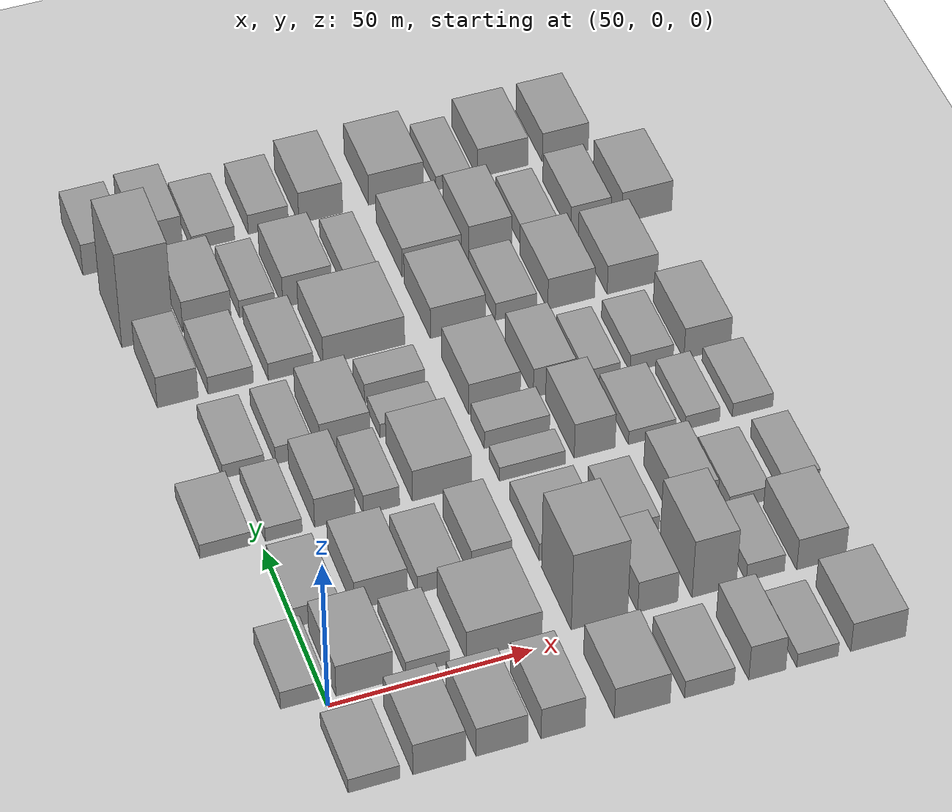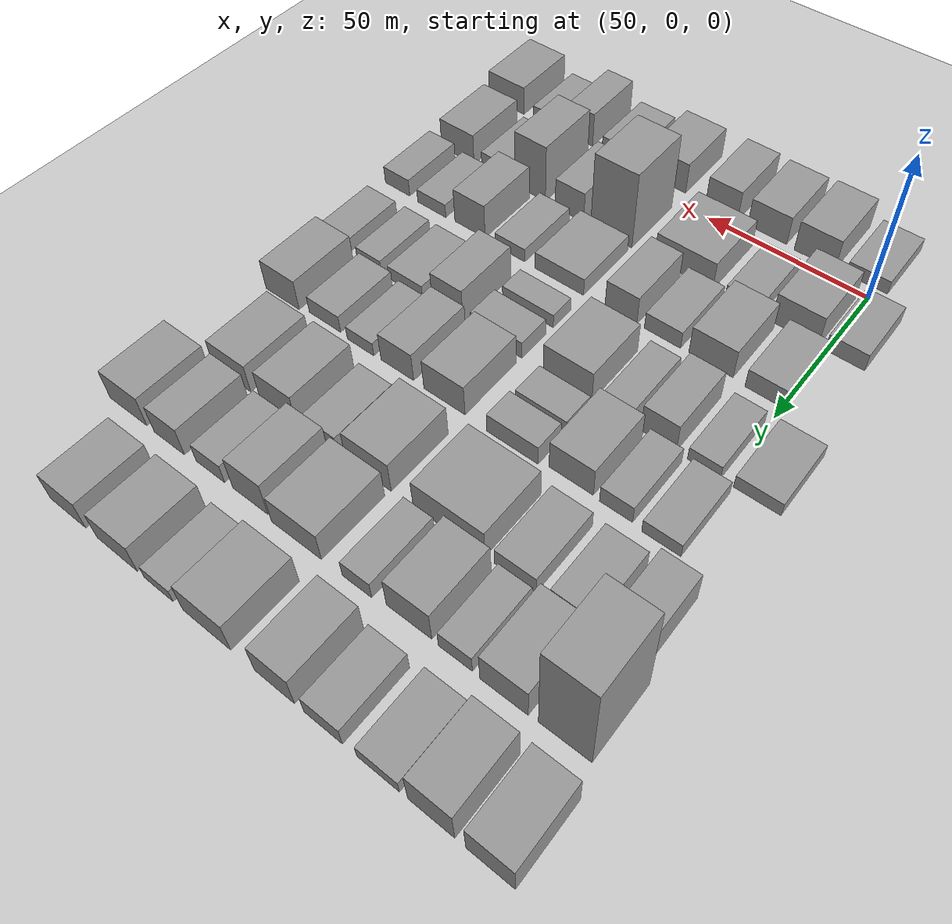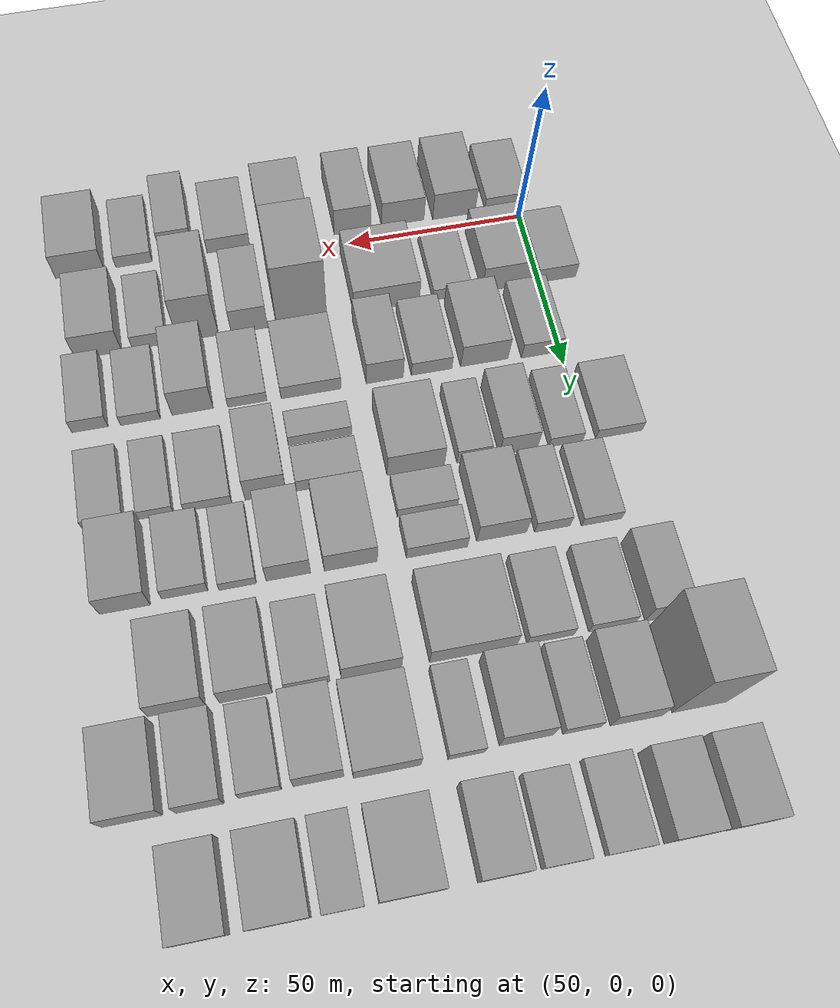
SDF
<sdf version="1.4">
 <world name="default">
  <model name="ground_plane">
   <static>1</static>
   <pose>100 65 0 0 -0 0</pose>
   <link name="link">
    <velocity_decay><linear>0</linear><angular>0</angular></velocity_decay>
    <collision name="collision">
     <geometry><plane><normal>0 0 1</normal><size>400 250</size></plane></geometry>
     <surface><friction><ode><mu>100</mu><mu2>50</mu2></ode></friction></surface>
    </collision>
    <visual name="visual">
     <geometry><plane><normal>0 0 1</normal><size>400 250</size></plane></geometry>
     <material>
      <script><name>Gazebo/Grey</name><uri>file://media/materials/scripts/gazebo.material</uri></script>
     </material>
    </visual>
   </link>
  </model>
  <model name="box_401">
   <static>1</static>
   <pose>52.74 -14.85 2 0 -0 0</pose>
   <link name="link">
    <velocity_decay><linear>0</linear><angular>0</angular></velocity_decay>
    <collision name="collision"><geometry><box><size>12.3 20.3 5</size></box></geometry></collision>
    <visual name="visual">
     <geometry><box><size>12.3 20.3 5</size></box></geometry>
     <material>
      <script><name>Gazebo/Grey</name><uri>file://media/materials/scripts/gazebo.material</uri></script>
     </material>
    </visual>
   </link>
  </model>
  <model name="box_501">
   <static>1</static>
   <pose>68.31 -14.55 5 0 -0 0</pose>
   <link name="link">
    <velocity_decay><linear>0</linear><angular>0</angular></velocity_decay>
    <collision name="collision"><geometry><box><size>12.6 20.9 11</size></box></geometry></collision>
    <visual name="visual">
     <geometry><box><size>12.6 20.9 11</size></box></geometry>
     <material>
      <script><name>Gazebo/Grey</name><uri>file://media/materials/scripts/gazebo.material</uri></script>
     </material>
    </visual>
   </link>
  </model>
  <model name="box_601">
   <static>1</static>
   <pose>83.43 -14.65 5 0 -0 0</pose>
   <link name="link">
    <velocity_decay><linear>0</linear><angular>0</angular></velocity_decay>
    <collision name="collision"><geometry><box><size>12.5 20.7 10</size></box></geometry></collision>
    <visual name="visual">
     <geometry><box><size>12.5 20.7 10</size></box></geometry>
     <material>
      <script><name>Gazebo/Grey</name><uri>file://media/materials/scripts/gazebo.material</uri></script>
     </material>
    </visual>
   </link>
  </model>
  <model name="box_701">
   <static>1</static>
   <pose>98.255 -14.6 5 0 -0 0</pose>
   <link name="link">
    <velocity_decay><linear>0</linear><angular>0</angular></velocity_decay>
    <collision name="collision"><geometry><box><size>10.69 20.8 11</size></box></geometry></collision>
    <visual name="visual">
     <geometry><box><size>10.69 20.8 11</size></box></geometry>
     <material>
      <script><name>Gazebo/Grey</name><uri>file://media/materials/scripts/gazebo.material</uri></script>
     </material>
    </visual>
   </link>
  </model>
  <model name="box_311">
   <static>1</static>
   <pose>44.92 12.85 3 0 -0 0</pose>
   <link name="link">
    <velocity_decay><linear>0</linear><angular>0</angular></velocity_decay>
    <collision name="collision"><geometry><box><size>11.2 20.3 6</size></box></geometry></collision>
    <visual name="visual">
     <geometry><box><size>11.2 20.3 6</size></box></geometry>
     <material>
      <script><name>Gazebo/Grey</name><uri>file://media/materials/scripts/gazebo.material</uri></script>
     </material>
    </visual>
   </link>
  </model>
  <model name="box_411">
   <static>1</static>
   <pose>59.4707 12.5461 5 0 -0 0</pose>
   <link name="link">
    <velocity_decay><linear>0</linear><angular>0</angular></velocity_decay>
    <collision name="collision"><geometry><box><size>13.8 20.6 11</size></box></geometry></collision>
    <visual name="visual">
     <geometry><box><size>13.8 20.6 11</size></box></geometry>
     <material>
      <script><name>Gazebo/Grey</name><uri>file://media/materials/scripts/gazebo.material</uri></script>
     </material>
    </visual>
   </link>
  </model>
  <model name="box_511">
   <static>1</static>
   <pose>75.05 12.85 2 0 -0 0</pose>
   <link name="link">
    <velocity_decay><linear>0</linear><angular>0</angular></velocity_decay>
    <collision name="collision"><geometry><box><size>10.8 20.3 5</size></box></geometry></collision>
    <visual name="visual">
     <geometry><box><size>10.8 20.3 5</size></box></geometry>
     <material>
      <script><name>Gazebo/Grey</name><uri>file://media/materials/scripts/gazebo.material</uri></script>
     </material>
    </visual>
   </link>
  </model>
  <model name="box_611">
   <static>1</static>
   <pose>93.74 12.65 5 0 -0 0</pose>
   <link name="link">
    <velocity_decay><linear>0</linear><angular>0</angular></velocity_decay>
    <collision name="collision"><geometry><box><size>18.72 20.7 10</size></box></geometry></collision>
    <visual name="visual">
     <geometry><box><size>18.72 20.7 10</size></box></geometry>
     <material>
      <script><name>Gazebo/Grey</name><uri>file://media/materials/scripts/gazebo.material</uri></script>
     </material>
    </visual>
   </link>
  </model>
  <model name="box_421">
   <static>1</static>
   <pose>55.17 35.35 3 0 -0 0</pose>
   <link name="link">
    <velocity_decay><linear>0</linear><angular>0</angular></velocity_decay>
    <collision name="collision"><geometry><box><size>11.3 20.7 7</size></box></geometry></collision>
    <visual name="visual">
     <geometry><box><size>11.3 20.7 7</size></box></geometry>
     <material>
      <script><name>Gazebo/Grey</name><uri>file://media/materials/scripts/gazebo.material</uri></script>
     </material>
    </visual>
   </link>
  </model>
  <model name="box_521">
   <static>1</static>
   <pose>71.13 35.15 5 0 -0 0</pose>
   <link name="link">
    <velocity_decay><linear>0</linear><angular>0</angular></velocity_decay>
    <collision name="collision"><geometry><box><size>13.2 20.3 10</size></box></geometry></collision>
    <visual name="visual">
     <geometry><box><size>13.2 20.3 10</size></box></geometry>
     <material>
      <script><name>Gazebo/Grey</name><uri>file://media/materials/scripts/gazebo.material</uri></script>
     </material>
    </visual>
   </link>
  </model>
  <model name="box_621">
   <static>1</static>
   <pose>85.77 35.2 3 0 -0 0</pose>
   <link name="link">
    <velocity_decay><linear>0</linear><angular>0</angular></velocity_decay>
    <collision name="collision"><geometry><box><size>11.2 20.4 6</size></box></geometry></collision>
    <visual name="visual">
     <geometry><box><size>11.2 20.4 6</size></box></geometry>
     <material>
      <script><name>Gazebo/Grey</name><uri>file://media/materials/scripts/gazebo.material</uri></script>
     </material>
    </visual>
   </link>
  </model>
  <model name="box_721">
   <static>1</static>
   <pose>98.725 35.3 5 0 -0 0</pose>
   <link name="link">
    <velocity_decay><linear>0</linear><angular>0</angular></velocity_decay>
    <collision name="collision"><geometry><box><size>10.15 20.6 10</size></box></geometry></collision>
    <visual name="visual">
     <geometry><box><size>10.15 20.6 10</size></box></geometry>
     <material>
      <script><name>Gazebo/Grey</name><uri>file://media/materials/scripts/gazebo.material</uri></script>
     </material>
    </visual>
   </link>
  </model>
  <model name="box_331">
   <static>1</static>
   <pose>41.33 62.75 2 0 -0 0</pose>
   <link name="link">
    <velocity_decay><linear>0</linear><angular>0</angular></velocity_decay>
    <collision name="collision"><geometry><box><size>12.7 20.5 5</size></box></geometry></collision>
    <visual name="visual">
     <geometry><box><size>12.7 20.5 5</size></box></geometry>
     <material>
      <script><name>Gazebo/Grey</name><uri>file://media/materials/scripts/gazebo.material</uri></script>
     </material>
    </visual>
   </link>
  </model>
  <model name="box_431">
   <static>1</static>
   <pose>55.84 62.7 2 0 -0 0</pose>
   <link name="link">
    <velocity_decay><linear>0</linear><angular>0</angular></velocity_decay>
    <collision name="collision"><geometry><box><size>9.2 20.6 5</size></box></geometry></collision>
    <visual name="visual">
     <geometry><box><size>9.2 20.6 5</size></box></geometry>
     <material>
      <script><name>Gazebo/Grey</name><uri>file://media/materials/scripts/gazebo.material</uri></script>
     </material>
    </visual>
   </link>
  </model>
  <model name="box_531">
   <static>1</static>
   <pose>68.73 62.8 5 0 -0 0</pose>
   <link name="link">
    <velocity_decay><linear>0</linear><angular>0</angular></velocity_decay>
    <collision name="collision"><geometry><box><size>10.2 20.4 10</size></box></geometry></collision>
    <visual name="visual">
     <geometry><box><size>10.2 20.4 10</size></box></geometry>
     <material>
      <script><name>Gazebo/Grey</name><uri>file://media/materials/scripts/gazebo.material</uri></script>
     </material>
    </visual>
   </link>
  </model>
  <model name="box_631">
   <static>1</static>
   <pose>80.54 62.85 3 0 -0 0</pose>
   <link name="link">
    <velocity_decay><linear>0</linear><angular>0</angular></velocity_decay>
    <collision name="collision"><geometry><box><size>9.1 20.3 7</size></box></geometry></collision>
    <visual name="visual">
     <geometry><box><size>9.1 20.3 7</size></box></geometry>
     <material>
      <script><name>Gazebo/Grey</name><uri>file://media/materials/scripts/gazebo.material</uri></script>
     </material>
    </visual>
   </link>
  </model>
  <model name="box_731">
   <static>1</static>
   <pose>96.02 62.95 5 0 -0 0</pose>
   <link name="link">
    <velocity_decay><linear>0</linear><angular>0</angular></velocity_decay>
    <collision name="collision"><geometry><box><size>15.16 20.1 11</size></box></geometry></collision>
    <visual name="visual">
     <geometry><box><size>15.16 20.1 11</size></box></geometry>
     <material>
      <script><name>Gazebo/Grey</name><uri>file://media/materials/scripts/gazebo.material</uri></script>
     </material>
    </visual>
   </link>
  </model>
  <model name="box_441">
   <static>1</static>
   <pose>52.73 85.5 2 0 -0 0</pose>
   <link name="link">
    <velocity_decay><linear>0</linear><angular>0</angular></velocity_decay>
    <collision name="collision"><geometry><box><size>10.6 21 5</size></box></geometry></collision>
    <visual name="visual">
     <geometry><box><size>10.6 21 5</size></box></geometry>
     <material>
      <script><name>Gazebo/Grey</name><uri>file://media/materials/scripts/gazebo.material</uri></script>
     </material>
    </visual>
   </link>
  </model>
  <model name="box_541">
   <static>1</static>
   <pose>65.51 85.25 3 0 -0 0</pose>
   <link name="link">
    <velocity_decay><linear>0</linear><angular>0</angular></velocity_decay>
    <collision name="collision"><geometry><box><size>9.3 20.5 6</size></box></geometry></collision>
    <visual name="visual">
     <geometry><box><size>9.3 20.5 6</size></box></geometry>
     <material>
      <script><name>Gazebo/Grey</name><uri>file://media/materials/scripts/gazebo.material</uri></script>
     </material>
    </visual>
   </link>
  </model>
  <model name="box_641">
   <static>1</static>
   <pose>78.61 85.05 5 0 -0 0</pose>
   <link name="link">
    <velocity_decay><linear>0</linear><angular>0</angular></velocity_decay>
    <collision name="collision"><geometry><box><size>12.9 20.1 10</size></box></geometry></collision>
    <visual name="visual">
     <geometry><box><size>12.9 20.1 10</size></box></geometry>
     <material>
      <script><name>Gazebo/Grey</name><uri>file://media/materials/scripts/gazebo.material</uri></script>
     </material>
    </visual>
   </link>
  </model>
  <model name="box_741">
   <static>1</static>
   <pose>95.455 79.9 2 0 -0 0</pose>
   <link name="link">
    <velocity_decay><linear>0</linear><angular>0</angular></velocity_decay>
    <collision name="collision"><geometry><box><size>15.69 9.8 5</size></box></geometry></collision>
    <visual name="visual">
     <geometry><box><size>15.69 9.8 5</size></box></geometry>
     <material>
      <script><name>Gazebo/Grey</name><uri>file://media/materials/scripts/gazebo.material</uri></script>
     </material>
    </visual>
   </link>
  </model>
  <model name="box_7412">
   <static>1</static>
   <pose>95.455 91.5 3 0 -0 0</pose>
   <link name="link">
    <velocity_decay><linear>0</linear><angular>0</angular></velocity_decay>
    <collision name="collision"><geometry><box><size>15.69 9 7</size></box></geometry></collision>
    <visual name="visual">
     <geometry><box><size>15.69 9 7</size></box></geometry>
     <material>
      <script><name>Gazebo/Grey</name><uri>file://media/materials/scripts/gazebo.material</uri></script>
     </material>
    </visual>
   </link>
  </model>
  <model name="box_351">
   <static>1</static>
   <pose>44.29 112.75 5 0 -0 0</pose>
   <link name="link">
    <velocity_decay><linear>0</linear><angular>0</angular></velocity_decay>
    <collision name="collision"><geometry><box><size>10.5 20.5 11</size></box></geometry></collision>
    <visual name="visual">
     <geometry><box><size>10.5 20.5 11</size></box></geometry>
     <material>
      <script><name>Gazebo/Grey</name><uri>file://media/materials/scripts/gazebo.material</uri></script>
     </material>
    </visual>
   </link>
  </model>
  <model name="box_451">
   <static>1</static>
   <pose>57.96 112.75 3 0 -0 0</pose>
   <link name="link">
    <velocity_decay><linear>0</linear><angular>0</angular></velocity_decay>
    <collision name="collision"><geometry><box><size>11.7 20.5 6</size></box></geometry></collision>
    <visual name="visual">
     <geometry><box><size>11.7 20.5 6</size></box></geometry>
     <material>
      <script><name>Gazebo/Grey</name><uri>file://media/materials/scripts/gazebo.material</uri></script>
     </material>
    </visual>
   </link>
  </model>
  <model name="box_551">
   <static>1</static>
   <pose>73.38 112.5 3 0 -0 0</pose>
   <link name="link">
    <velocity_decay><linear>0</linear><angular>0</angular></velocity_decay>
    <collision name="collision"><geometry><box><size>11.7 21 6</size></box></geometry></collision>
    <visual name="visual">
     <geometry><box><size>11.7 21 6</size></box></geometry>
     <material>
      <script><name>Gazebo/Grey</name><uri>file://media/materials/scripts/gazebo.material</uri></script>
     </material>
    </visual>
   </link>
  </model>
  <model name="box_651">
   <static>1</static>
   <pose>92.595 112.75 5 0 -0 0</pose>
   <link name="link">
    <velocity_decay><linear>0</linear><angular>0</angular></velocity_decay>
    <collision name="collision"><geometry><box><size>21.41 20.5 10</size></box></geometry></collision>
    <visual name="visual">
     <geometry><box><size>21.41 20.5 10</size></box></geometry>
     <material>
      <script><name>Gazebo/Grey</name><uri>file://media/materials/scripts/gazebo.material</uri></script>
     </material>
    </visual>
   </link>
  </model>
  <model name="box_361">
   <static>1</static>
   <pose>43.14 135.2 16 0 -0 0</pose>
   <link name="link">
    <velocity_decay><linear>0</linear><angular>0</angular></velocity_decay>
    <collision name="collision"><geometry><box><size>13.4 20.4 33</size></box></geometry></collision>
    <visual name="visual">
     <geometry><box><size>13.4 20.4 33</size></box></geometry>
     <material>
      <script><name>Gazebo/Grey</name><uri>file://media/materials/scripts/gazebo.material</uri></script>
     </material>
    </visual>
   </link>
  </model>
  <model name="box_461">
   <static>1</static>
   <pose>58.62 135.3 5 0 -0 0</pose>
   <link name="link">
    <velocity_decay><linear>0</linear><angular>0</angular></velocity_decay>
    <collision name="collision"><geometry><box><size>12.7 20.6 11</size></box></geometry></collision>
    <visual name="visual">
     <geometry><box><size>12.7 20.6 11</size></box></geometry>
     <material>
      <script><name>Gazebo/Grey</name><uri>file://media/materials/scripts/gazebo.material</uri></script>
     </material>
    </visual>
   </link>
  </model>
  <model name="box_561">
   <static>1</static>
   <pose>71.77 135.2 3 0 -0 0</pose>
   <link name="link">
    <velocity_decay><linear>0</linear><angular>0</angular></velocity_decay>
    <collision name="collision"><geometry><box><size>9.3 20.4 6</size></box></geometry></collision>
    <visual name="visual">
     <geometry><box><size>9.3 20.4 6</size></box></geometry>
     <material>
      <script><name>Gazebo/Grey</name><uri>file://media/materials/scripts/gazebo.material</uri></script>
     </material>
    </visual>
   </link>
  </model>
  <model name="box_661">
   <static>1</static>
   <pose>85.05 135.05 5 0 -0 0</pose>
   <link name="link">
    <velocity_decay><linear>0</linear><angular>0</angular></velocity_decay>
    <collision name="collision"><geometry><box><size>13 20.1 11</size></box></geometry></collision>
    <visual name="visual">
     <geometry><box><size>13 20.1 11</size></box></geometry>
     <material>
      <script><name>Gazebo/Grey</name><uri>file://media/materials/scripts/gazebo.material</uri></script>
     </material>
    </visual>
   </link>
  </model>
  <model name="box_761">
   <static>1</static>
   <pose>99.485 135.45 3 0 -0 0</pose>
   <link name="link">
    <velocity_decay><linear>0</linear><angular>0</angular></velocity_decay>
    <collision name="collision"><geometry><box><size>8.83 20.9 6</size></box></geometry></collision>
    <visual name="visual">
     <geometry><box><size>8.83 20.9 6</size></box></geometry>
     <material>
      <script><name>Gazebo/Grey</name><uri>file://media/materials/scripts/gazebo.material</uri></script>
     </material>
    </visual>
   </link>
  </model>
  <model name="box_371">
   <static>1</static>
   <pose>40.02 162.8 5 0 -0 0</pose>
   <link name="link">
    <velocity_decay><linear>0</linear><angular>0</angular></velocity_decay>
    <collision name="collision"><geometry><box><size>11.9 20.4 11</size></box></geometry></collision>
    <visual name="visual">
     <geometry><box><size>11.9 20.4 11</size></box></geometry>
     <material>
      <script><name>Gazebo/Grey</name><uri>file://media/materials/scripts/gazebo.material</uri></script>
     </material>
    </visual>
   </link>
  </model>
  <model name="box_471">
   <static>1</static>
   <pose>54.61 162.95 6 0 -0 0</pose>
   <link name="link">
    <velocity_decay><linear>0</linear><angular>0</angular></velocity_decay>
    <collision name="collision"><geometry><box><size>11.9 20.1 12</size></box></geometry></collision>
    <visual name="visual">
     <geometry><box><size>11.9 20.1 12</size></box></geometry>
     <material>
      <script><name>Gazebo/Grey</name><uri>file://media/materials/scripts/gazebo.material</uri></script>
     </material>
    </visual>
   </link>
  </model>
  <model name="box_571">
   <static>1</static>
   <pose>68.45 162.55 2 0 -0 0</pose>
   <link name="link">
    <velocity_decay><linear>0</linear><angular>0</angular></velocity_decay>
    <collision name="collision"><geometry><box><size>11.4 20.9 5</size></box></geometry></collision>
    <visual name="visual">
     <geometry><box><size>11.4 20.9 5</size></box></geometry>
     <material>
      <script><name>Gazebo/Grey</name><uri>file://media/materials/scripts/gazebo.material</uri></script>
     </material>
    </visual>
   </link>
  </model>
  <model name="box_671">
   <static>1</static>
   <pose>83.42 162.9 3 0 -0 0</pose>
   <link name="link">
    <velocity_decay><linear>0</linear><angular>0</angular></velocity_decay>
    <collision name="collision"><geometry><box><size>10.8 20.2 7</size></box></geometry></collision>
    <visual name="visual">
     <geometry><box><size>10.8 20.2 7</size></box></geometry>
     <material>
      <script><name>Gazebo/Grey</name><uri>file://media/materials/scripts/gazebo.material</uri></script>
     </material>
    </visual>
   </link>
  </model>
  <model name="box_771">
   <static>1</static>
   <pose>97.39 162.65 5 0 -0 0</pose>
   <link name="link">
    <velocity_decay><linear>0</linear><angular>0</angular></velocity_decay>
    <collision name="collision"><geometry><box><size>11.82 20.7 11</size></box></geometry></collision>
    <visual name="visual">
     <geometry><box><size>11.82 20.7 11</size></box></geometry>
     <material>
      <script><name>Gazebo/Grey</name><uri>file://media/materials/scripts/gazebo.material</uri></script>
     </material>
    </visual>
   </link>
  </model>
  <model name="box_102">
   <static>1</static>
   <pose>117.65 -14.95 5 0 -0 0</pose>
   <link name="link">
    <velocity_decay><linear>0</linear><angular>0</angular></velocity_decay>
    <collision name="collision"><geometry><box><size>13.7 20.1 11</size></box></geometry></collision>
    <visual name="visual">
     <geometry><box><size>13.7 20.1 11</size></box></geometry>
     <material>
      <script><name>Gazebo/Grey</name><uri>file://media/materials/scripts/gazebo.material</uri></script>
     </material>
    </visual>
   </link>
  </model>
  <model name="box_202">
   <static>1</static>
   <pose>134.23 -14.8 3 0 -0 0</pose>
   <link name="link">
    <velocity_decay><linear>0</linear><angular>0</angular></velocity_decay>
    <collision name="collision"><geometry><box><size>12.3 20.4 6</size></box></geometry></collision>
    <visual name="visual">
     <geometry><box><size>12.3 20.4 6</size></box></geometry>
     <material>
      <script><name>Gazebo/Grey</name><uri>file://media/materials/scripts/gazebo.material</uri></script>
     </material>
    </visual>
   </link>
  </model>
  <model name="box_302">
   <static>1</static>
   <pose>148.63 -14.95 6 0 -0 0</pose>
   <link name="link">
    <velocity_decay><linear>0</linear><angular>0</angular></velocity_decay>
    <collision name="collision"><geometry><box><size>9.2 20.1 12</size></box></geometry></collision>
    <visual name="visual">
     <geometry><box><size>9.2 20.1 12</size></box></geometry>
     <material>
      <script><name>Gazebo/Grey</name><uri>file://media/materials/scripts/gazebo.material</uri></script>
     </material>
    </visual>
   </link>
  </model>
  <model name="box_402">
   <static>1</static>
   <pose>161.24 -14.9 2 0 -0 0</pose>
   <link name="link">
    <velocity_decay><linear>0</linear><angular>0</angular></velocity_decay>
    <collision name="collision"><geometry><box><size>10.4 20.2 5</size></box></geometry></collision>
    <visual name="visual">
     <geometry><box><size>10.4 20.2 5</size></box></geometry>
     <material>
      <script><name>Gazebo/Grey</name><uri>file://media/materials/scripts/gazebo.material</uri></script>
     </material>
    </visual>
   </link>
  </model>
  <model name="box_502">
   <static>1</static>
   <pose>176.52 -14.55 5 0 -0 0</pose>
   <link name="link">
    <velocity_decay><linear>0</linear><angular>0</angular></velocity_decay>
    <collision name="collision"><geometry><box><size>13.8 20.9 10</size></box></geometry></collision>
    <visual name="visual">
     <geometry><box><size>13.8 20.9 10</size></box></geometry>
     <material>
      <script><name>Gazebo/Grey</name><uri>file://media/materials/scripts/gazebo.material</uri></script>
     </material>
    </visual>
   </link>
  </model>
  <model name="box_112">
   <static>1</static>
   <pose>117.65 12.9 13 0 -0 0</pose>
   <link name="link">
    <velocity_decay><linear>0</linear><angular>0</angular></velocity_decay>
    <collision name="collision"><geometry><box><size>14.1 20.2 27</size></box></geometry></collision>
    <visual name="visual">
     <geometry><box><size>14.1 20.2 27</size></box></geometry>
     <material>
      <script><name>Gazebo/Grey</name><uri>file://media/materials/scripts/gazebo.material</uri></script>
     </material>
    </visual>
   </link>
  </model>
  <model name="box_212">
   <static>1</static>
   <pose>132.2 12.8 5 0 -0 0</pose>
   <link name="link">
    <velocity_decay><linear>0</linear><angular>0</angular></velocity_decay>
    <collision name="collision"><geometry><box><size>10.1 20.4 11</size></box></geometry></collision>
    <visual name="visual">
     <geometry><box><size>10.1 20.4 11</size></box></geometry>
     <material>
      <script><name>Gazebo/Grey</name><uri>file://media/materials/scripts/gazebo.material</uri></script>
     </material>
    </visual>
   </link>
  </model>
  <model name="box_312">
   <static>1</static>
   <pose>146.38 12.7 10 0 -0 0</pose>
   <link name="link">
    <velocity_decay><linear>0</linear><angular>0</angular></velocity_decay>
    <collision name="collision"><geometry><box><size>11.2 20.6 20</size></box></geometry></collision>
    <visual name="visual">
     <geometry><box><size>11.2 20.6 20</size></box></geometry>
     <material>
      <script><name>Gazebo/Grey</name><uri>file://media/materials/scripts/gazebo.material</uri></script>
     </material>
    </visual>
   </link>
  </model>
  <model name="box_412">
   <static>1</static>
   <pose>159.57 12.9 3 0 -0 0</pose>
   <link name="link">
    <velocity_decay><linear>0</linear><angular>0</angular></velocity_decay>
    <collision name="collision"><geometry><box><size>9.7 20.2 6</size></box></geometry></collision>
    <visual name="visual">
     <geometry><box><size>9.7 20.2 6</size></box></geometry>
     <material>
      <script><name>Gazebo/Grey</name><uri>file://media/materials/scripts/gazebo.material</uri></script>
     </material>
    </visual>
   </link>
  </model>
  <model name="box_512">
   <static>1</static>
   <pose>173.7 12.65 5 0 -0 0</pose>
   <link name="link">
    <velocity_decay><linear>0</linear><angular>0</angular></velocity_decay>
    <collision name="collision"><geometry><box><size>12.6 20.7 11</size></box></geometry></collision>
    <visual name="visual">
     <geometry><box><size>12.6 20.7 11</size></box></geometry>
     <material>
      <script><name>Gazebo/Grey</name><uri>file://media/materials/scripts/gazebo.material</uri></script>
     </material>
    </visual>
   </link>
  </model>
  <model name="box_122">
   <static>1</static>
   <pose>118.85 35.4 3 0 -0 0</pose>
   <link name="link">
    <velocity_decay><linear>0</linear><angular>0</angular></velocity_decay>
    <collision name="collision"><geometry><box><size>16.3 20.8 6</size></box></geometry></collision>
    <visual name="visual">
     <geometry><box><size>16.3 20.8 6</size></box></geometry>
     <material>
      <script><name>Gazebo/Grey</name><uri>file://media/materials/scripts/gazebo.material</uri></script>
     </material>
    </visual>
   </link>
  </model>
  <model name="box_222">
   <static>1</static>
   <pose>136.05 35.25 2 0 -0 0</pose>
   <link name="link">
    <velocity_decay><linear>0</linear><angular>0</angular></velocity_decay>
    <collision name="collision"><geometry><box><size>10.5 20.5 5</size></box></geometry></collision>
    <visual name="visual">
     <geometry><box><size>10.5 20.5 5</size></box></geometry>
     <material>
      <script><name>Gazebo/Grey</name><uri>file://media/materials/scripts/gazebo.material</uri></script>
     </material>
    </visual>
   </link>
  </model>
  <model name="box_322">
   <static>1</static>
   <pose>150.64 35.1 6 0 -0 0</pose>
   <link name="link">
    <velocity_decay><linear>0</linear><angular>0</angular></velocity_decay>
    <collision name="collision"><geometry><box><size>11 20.2 12</size></box></geometry></collision>
    <visual name="visual">
     <geometry><box><size>11 20.2 12</size></box></geometry>
     <material>
      <script><name>Gazebo/Grey</name><uri>file://media/materials/scripts/gazebo.material</uri></script>
     </material>
    </visual>
   </link>
  </model>
  <model name="box_422">
   <static>1</static>
   <pose>164.6 35.25 2 0 -0 0</pose>
   <link name="link">
    <velocity_decay><linear>0</linear><angular>0</angular></velocity_decay>
    <collision name="collision"><geometry><box><size>10.6 20.5 5</size></box></geometry></collision>
    <visual name="visual">
     <geometry><box><size>10.6 20.5 5</size></box></geometry>
     <material>
      <script><name>Gazebo/Grey</name><uri>file://media/materials/scripts/gazebo.material</uri></script>
     </material>
    </visual>
   </link>
  </model>
  <model name="box_522">
   <static>1</static>
   <pose>177.86 35.15 3 0 -0 0</pose>
   <link name="link">
    <velocity_decay><linear>0</linear><angular>0</angular></velocity_decay>
    <collision name="collision"><geometry><box><size>9.5 20.3 6</size></box></geometry></collision>
    <visual name="visual">
     <geometry><box><size>9.5 20.3 6</size></box></geometry>
     <material>
      <script><name>Gazebo/Grey</name><uri>file://media/materials/scripts/gazebo.material</uri></script>
     </material>
    </visual>
   </link>
  </model>
  <model name="box_132">
   <static>1</static>
   <pose>118.85 55.85 2 0 -0 0</pose>
   <link name="link">
    <velocity_decay><linear>0</linear><angular>0</angular></velocity_decay>
    <collision name="collision"><geometry><box><size>16.9 7.7 5</size></box></geometry></collision>
    <visual name="visual">
     <geometry><box><size>16.9 7.7 5</size></box></geometry>
     <material>
      <script><name>Gazebo/Grey</name><uri>file://media/materials/scripts/gazebo.material</uri></script>
     </material>
    </visual>
   </link>
  </model>
  <model name="box_1322">
   <static>1</static>
   <pose>118.85 68 3 0 -0 0</pose>
   <link name="link">
    <velocity_decay><linear>0</linear><angular>0</angular></velocity_decay>
    <collision name="collision"><geometry><box><size>16.9 10 6</size></box></geometry></collision>
    <visual name="visual">
     <geometry><box><size>16.9 10 6</size></box></geometry>
     <material>
      <script><name>Gazebo/Grey</name><uri>file://media/materials/scripts/gazebo.material</uri></script>
     </material>
    </visual>
   </link>
  </model>
  <model name="box_232">
   <static>1</static>
   <pose>135.25 62.9 6 0 -0 0</pose>
   <link name="link">
    <velocity_decay><linear>0</linear><angular>0</angular></velocity_decay>
    <collision name="collision"><geometry><box><size>10.6 20.2 12</size></box></geometry></collision>
    <visual name="visual">
     <geometry><box><size>10.6 20.2 12</size></box></geometry>
     <material>
      <script><name>Gazebo/Grey</name><uri>file://media/materials/scripts/gazebo.material</uri></script>
     </material>
    </visual>
   </link>
  </model>
  <model name="box_332">
   <static>1</static>
   <pose>150.21 62.9 2 0 -0 0</pose>
   <link name="link">
    <velocity_decay><linear>0</linear><angular>0</angular></velocity_decay>
    <collision name="collision"><geometry><box><size>12.3 20.2 5</size></box></geometry></collision>
    <visual name="visual">
     <geometry><box><size>12.3 20.2 5</size></box></geometry>
     <material>
      <script><name>Gazebo/Grey</name><uri>file://media/materials/scripts/gazebo.material</uri></script>
     </material>
    </visual>
   </link>
  </model>
  <model name="box_432">
   <static>1</static>
   <pose>163.46 62.9 2 0 -0 0</pose>
   <link name="link">
    <velocity_decay><linear>0</linear><angular>0</angular></velocity_decay>
    <collision name="collision"><geometry><box><size>9 20.2 5</size></box></geometry></collision>
    <visual name="visual">
     <geometry><box><size>9 20.2 5</size></box></geometry>
     <material>
      <script><name>Gazebo/Grey</name><uri>file://media/materials/scripts/gazebo.material</uri></script>
     </material>
    </visual>
   </link>
  </model>
  <model name="box_532">
   <static>1</static>
   <pose>176.76 62.95 2 0 -0 0</pose>
   <link name="link">
    <velocity_decay><linear>0</linear><angular>0</angular></velocity_decay>
    <collision name="collision"><geometry><box><size>10.7 20.1 5</size></box></geometry></collision>
    <visual name="visual">
     <geometry><box><size>10.7 20.1 5</size></box></geometry>
     <material>
      <script><name>Gazebo/Grey</name><uri>file://media/materials/scripts/gazebo.material</uri></script>
     </material>
    </visual>
   </link>
  </model>
  <model name="box_142">
   <static>1</static>
   <pose>117.3 85.25 5 0 -0 0</pose>
   <link name="link">
    <velocity_decay><linear>0</linear><angular>0</angular></velocity_decay>
    <collision name="collision"><geometry><box><size>13.4 20.5 11</size></box></geometry></collision>
    <visual name="visual">
     <geometry><box><size>13.4 20.5 11</size></box></geometry>
     <material>
      <script><name>Gazebo/Grey</name><uri>file://media/materials/scripts/gazebo.material</uri></script>
     </material>
    </visual>
   </link>
  </model>
  <model name="box_242">
   <static>1</static>
   <pose>132.99 85.2 5 0 -0 0</pose>
   <link name="link">
    <velocity_decay><linear>0</linear><angular>0</angular></velocity_decay>
    <collision name="collision"><geometry><box><size>11.1 20.4 10</size></box></geometry></collision>
    <visual name="visual">
     <geometry><box><size>11.1 20.4 10</size></box></geometry>
     <material>
      <script><name>Gazebo/Grey</name><uri>file://media/materials/scripts/gazebo.material</uri></script>
     </material>
    </visual>
   </link>
  </model>
  <model name="box_342">
   <static>1</static>
   <pose>145.65 85.25 2 0 -0 0</pose>
   <link name="link">
    <velocity_decay><linear>0</linear><angular>0</angular></velocity_decay>
    <collision name="collision"><geometry><box><size>9.3 20.5 5</size></box></geometry></collision>
    <visual name="visual">
     <geometry><box><size>9.3 20.5 5</size></box></geometry>
     <material>
      <script><name>Gazebo/Grey</name><uri>file://media/materials/scripts/gazebo.material</uri></script>
     </material>
    </visual>
   </link>
  </model>
  <model name="box_442">
   <static>1</static>
   <pose>158.71 85.05 3 0 -0 0</pose>
   <link name="link">
    <velocity_decay><linear>0</linear><angular>0</angular></velocity_decay>
    <collision name="collision"><geometry><box><size>11.4 20.1 6</size></box></geometry></collision>
    <visual name="visual">
     <geometry><box><size>11.4 20.1 6</size></box></geometry>
     <material>
      <script><name>Gazebo/Grey</name><uri>file://media/materials/scripts/gazebo.material</uri></script>
     </material>
    </visual>
   </link>
  </model>
  <model name="box_542">
   <static>1</static>
   <pose>173.59 85.5 5 0 -0 0</pose>
   <link name="link">
    <velocity_decay><linear>0</linear><angular>0</angular></velocity_decay>
    <collision name="collision"><geometry><box><size>12.5 21 11</size></box></geometry></collision>
    <visual name="visual">
     <geometry><box><size>12.5 21 11</size></box></geometry>
     <material>
      <script><name>Gazebo/Grey</name><uri>file://media/materials/scripts/gazebo.material</uri></script>
     </material>
    </visual>
   </link>
  </model>
  <model name="box_152">
   <static>1</static>
   <pose>117.4 112.75 5 0 -0 0</pose>
   <link name="link">
    <velocity_decay><linear>0</linear><angular>0</angular></velocity_decay>
    <collision name="collision"><geometry><box><size>14.6 20.5 11</size></box></geometry></collision>
    <visual name="visual">
     <geometry><box><size>14.6 20.5 11</size></box></geometry>
     <material>
      <script><name>Gazebo/Grey</name><uri>file://media/materials/scripts/gazebo.material</uri></script>
     </material>
    </visual>
   </link>
  </model>
  <model name="box_252">
   <static>1</static>
   <pose>132.95 112.9 3 0 -0 0</pose>
   <link name="link">
    <velocity_decay><linear>0</linear><angular>0</angular></velocity_decay>
    <collision name="collision"><geometry><box><size>11 20.2 6</size></box></geometry></collision>
    <visual name="visual">
     <geometry><box><size>11 20.2 6</size></box></geometry>
     <material>
      <script><name>Gazebo/Grey</name><uri>file://media/materials/scripts/gazebo.material</uri></script>
     </material>
    </visual>
   </link>
  </model>
  <model name="box_352">
   <static>1</static>
   <pose>147.57 112.65 5 0 -0 0</pose>
   <link name="link">
    <velocity_decay><linear>0</linear><angular>0</angular></velocity_decay>
    <collision name="collision"><geometry><box><size>12.6 20.7 11</size></box></geometry></collision>
    <visual name="visual">
     <geometry><box><size>12.6 20.7 11</size></box></geometry>
     <material>
      <script><name>Gazebo/Grey</name><uri>file://media/materials/scripts/gazebo.material</uri></script>
     </material>
    </visual>
   </link>
  </model>
  <model name="box_452">
   <static>1</static>
   <pose>163.98 112.55 5 0 -0 0</pose>
   <link name="link">
    <velocity_decay><linear>0</linear><angular>0</angular></velocity_decay>
    <collision name="collision"><geometry><box><size>13.6 20.9 10</size></box></geometry></collision>
    <visual name="visual">
     <geometry><box><size>13.6 20.9 10</size></box></geometry>
     <material>
      <script><name>Gazebo/Grey</name><uri>file://media/materials/scripts/gazebo.material</uri></script>
     </material>
    </visual>
   </link>
  </model>
  <model name="box_162">
   <static>1</static>
   <pose>118.2 135.45 5 0 -0 0</pose>
   <link name="link">
    <velocity_decay><linear>0</linear><angular>0</angular></velocity_decay>
    <collision name="collision"><geometry><box><size>15.8 20.9 10</size></box></geometry></collision>
    <visual name="visual">
     <geometry><box><size>15.8 20.9 10</size></box></geometry>
     <material>
      <script><name>Gazebo/Grey</name><uri>file://media/materials/scripts/gazebo.material</uri></script>
     </material>
    </visual>
   </link>
  </model>
  <model name="box_262">
   <static>1</static>
   <pose>133.99 135.05 6 0 -0 0</pose>
   <link name="link">
    <velocity_decay><linear>0</linear><angular>0</angular></velocity_decay>
    <collision name="collision"><geometry><box><size>11.7 20.1 12</size></box></geometry></collision>
    <visual name="visual">
     <geometry><box><size>11.7 20.1 12</size></box></geometry>
     <material>
      <script><name>Gazebo/Grey</name><uri>file://media/materials/scripts/gazebo.material</uri></script>
     </material>
    </visual>
   </link>
  </model>
  <model name="box_362">
   <static>1</static>
   <pose>147.55 135.1 3 0 -0 0</pose>
   <link name="link">
    <velocity_decay><linear>0</linear><angular>0</angular></velocity_decay>
    <collision name="collision"><geometry><box><size>9.9 20.2 7</size></box></geometry></collision>
    <visual name="visual">
     <geometry><box><size>9.9 20.2 7</size></box></geometry>
     <material>
      <script><name>Gazebo/Grey</name><uri>file://media/materials/scripts/gazebo.material</uri></script>
     </material>
    </visual>
   </link>
  </model>
  <model name="box_462">
   <static>1</static>
   <pose>161.31 135.4 5 0 -0 0</pose>
   <link name="link">
    <velocity_decay><linear>0</linear><angular>0</angular></velocity_decay>
    <collision name="collision"><geometry><box><size>10.9 20.8 10</size></box></geometry></collision>
    <visual name="visual">
     <geometry><box><size>10.9 20.8 10</size></box></geometry>
     <material>
      <script><name>Gazebo/Grey</name><uri>file://media/materials/scripts/gazebo.material</uri></script>
     </material>
    </visual>
   </link>
  </model>
  <model name="box_562">
   <static>1</static>
   <pose>176.72 135.3 5 0 -0 0</pose>
   <link name="link">
    <velocity_decay><linear>0</linear><angular>0</angular></velocity_decay>
    <collision name="collision"><geometry><box><size>13.8 20.6 11</size></box></geometry></collision>
    <visual name="visual">
     <geometry><box><size>13.8 20.6 11</size></box></geometry>
     <material>
      <script><name>Gazebo/Grey</name><uri>file://media/materials/scripts/gazebo.material</uri></script>
     </material>
    </visual>
   </link>
  </model>
  <model name="box_172">
   <static>1</static>
   <pose>118 162.85 5 0 -0 0</pose>
   <link name="link">
    <velocity_decay><linear>0</linear><angular>0</angular></velocity_decay>
    <collision name="collision"><geometry><box><size>15 20.3 11</size></box></geometry></collision>
    <visual name="visual">
     <geometry><box><size>15 20.3 11</size></box></geometry>
     <material>
      <script><name>Gazebo/Grey</name><uri>file://media/materials/scripts/gazebo.material</uri></script>
     </material>
    </visual>
   </link>
  </model>
  <model name="box_272">
   <static>1</static>
   <pose>133.42 162.6 2 0 -0 0</pose>
   <link name="link">
    <velocity_decay><linear>0</linear><angular>0</angular></velocity_decay>
    <collision name="collision"><geometry><box><size>9.5 20.8 5</size></box></geometry></collision>
    <visual name="visual">
     <geometry><box><size>9.5 20.8 5</size></box></geometry>
     <material>
      <script><name>Gazebo/Grey</name><uri>file://media/materials/scripts/gazebo.material</uri></script>
     </material>
    </visual>
   </link>
  </model>
  <model name="box_372">
   <static>1</static>
   <pose>147.35 162.9 5 0 -0 0</pose>
   <link name="link">
    <velocity_decay><linear>0</linear><angular>0</angular></velocity_decay>
    <collision name="collision"><geometry><box><size>13.9 20.2 10</size></box></geometry></collision>
    <visual name="visual">
     <geometry><box><size>13.9 20.2 10</size></box></geometry>
     <material>
      <script><name>Gazebo/Grey</name><uri>file://media/materials/scripts/gazebo.material</uri></script>
     </material>
    </visual>
   </link>
  </model>
  <model name="box_472">
   <static>1</static>
   <pose>164.67 162.9 5 0 -0 0</pose>
   <link name="link">
    <velocity_decay><linear>0</linear><angular>0</angular></velocity_decay>
    <collision name="collision"><geometry><box><size>12.8 20.2 10</size></box></geometry></collision>
    <visual name="visual">
     <geometry><box><size>12.8 20.2 10</size></box></geometry>
     <material>
      <script><name>Gazebo/Grey</name><uri>file://media/materials/scripts/gazebo.material</uri></script>
     </material>
    </visual>
   </link>
  </model>
 </world>
</sdf>
